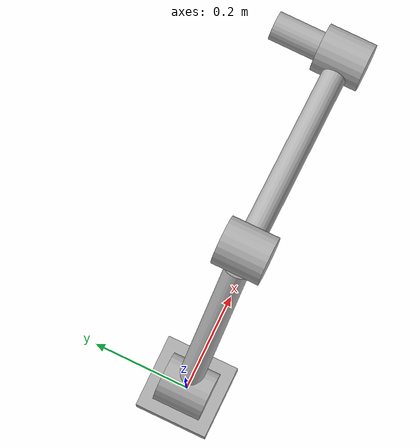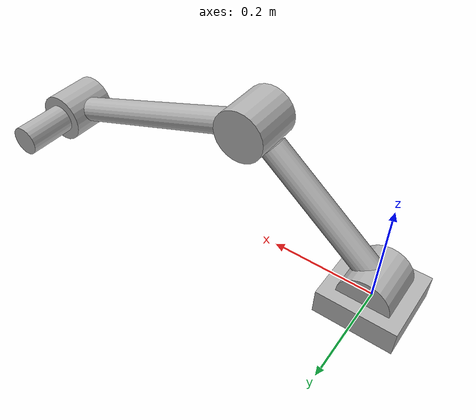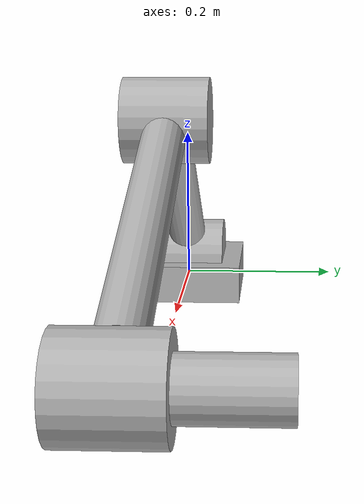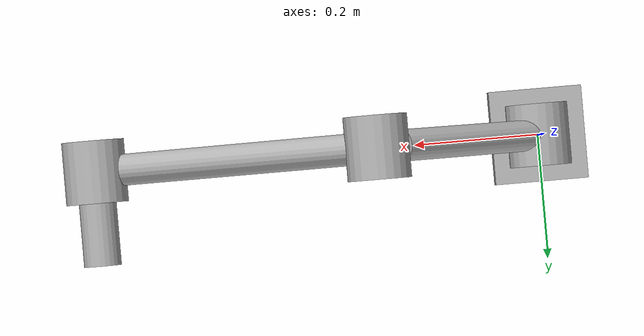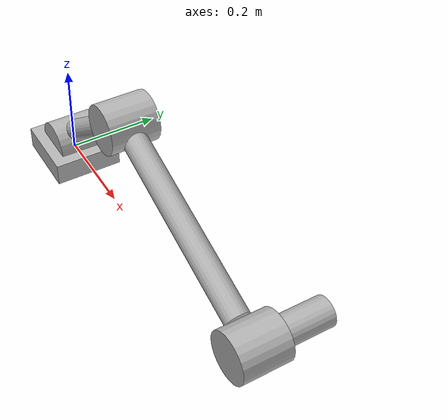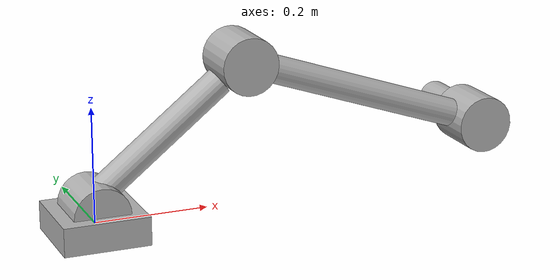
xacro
<?xml version="1.0"?>
<robot xmlns:xacro="http://www.ros.org/wiki/xacro" name="half_cylinder_revolute_joint_with_links">

  <material name="grey">
    <color rgba="0.7 0.7 0.7 1"/>
  </material>

  <material name="blue">
    <color rgba="0.0 0.0 1.0 1"/>  <!-- RGB values for blue -->
  </material>

  <material name="orange">
    <color rgba="1.0 0.5 0.0 1"/>  <!-- RGB values for orange -->
  </material>

  <!-- Base link -->
  <link name="base_link">
    <visual>
      <geometry>
        <box size="0.15 0.15 0.05"/>  <!-- Width, Depth, Height -->
      </geometry>
      <origin xyz="0 0 0" rpy="0 0 0"/>  <!-- Positioned at the origin -->
      <material name="grey"/>  <!-- Base link color -->
    </visual>
    <collision>
      <geometry>
        <box size="0.2 0.2 0.05"/>
      </geometry>
      <origin xyz="0 0 0" rpy="0 0 0"/>
    </collision>
    <inertial>
      <mass value="1.0"/>
      <origin xyz="0 0 0"/>
      <inertia ixx="0.01" ixy="0.0" ixz="0.0" iyy="0.01" iyz="0.0" izz="0.01"/>
    </inertial>
  </link>

  <!-- Revolute Joint (Half-Cylinder) -->
  <joint name="revolute_joint" type="revolute">
    <parent link="base_link"/>
    <child link="joint_link"/>
    <origin xyz="0 0 0.025" rpy="0 0.8 0"/>  <!-- Positioned at the center of the half-cylinder -->
    <axis xyz="0 1 0"/>  <!-- Revolute around the y-axis -->
    <limit lower="-3.14" upper="3.14" effort="100" velocity="1.0"/> <!-- Limits for the joint -->
    <dynamics damping="10" friction="10"/>
  </joint>

  <!-- Link representing the revolute joint as a half-cylinder -->
  <link name="joint_link">
    <visual>
      <geometry>
        <cylinder length="0.1" radius="0.05"/>  <!-- Full cylinder length and radius -->
      </geometry>
      <origin xyz="0 0 0" rpy="1.5708 0 0"/>  <!-- Rotate to lie on its side -->
      <material name="grey"/>  <!-- Material color -->
    </visual>
    <collision>
      <geometry>
        <cylinder length="0.1" radius="0.05"/>
      </geometry>
      <origin xyz="0 0 0" rpy="1.5708 0 0"/>  <!-- Same position for collision -->
    </collision>
    <inertial>
      <mass value="0.5"/>
      <origin xyz="0 0 0"/>
      <inertia ixx="0.01" ixy="0.0" ixz="0.0" iyy="0.01" iyz="0.0" izz="0.01"/>
    </inertial>
  </link>

  <!-- First Cylindrical Link -->
  <joint name="cylindrical_link_joint" type="revolute">
    <parent link="joint_link"/>
    <child link="cylindrical_link"/>
    <origin xyz="0 0 0.15" rpy="0 0.1 0"/>  <!-- Positioned at the end of the half-cylinder -->
    <axis xyz="0 0 1"/>  <!-- Revolute around the z-axis -->
    <limit lower="-3.14" upper="3.14" effort="100" velocity="1.0"/> <!-- Limits for the joint -->
    <dynamics damping="10" friction="10"/>
  </joint>

  <!-- Link representing the cylindrical link -->
  <link name="cylindrical_link">
    <visual>
      <geometry>
        <cylinder length="0.3" radius="0.025"/>  <!-- Cylindrical link definition -->
      </geometry>
      <origin xyz="0 0 0" rpy="0 0 0"/>  <!-- Centered on the joint -->
      <material name="grey"/>  <!-- Set the material to blue -->
    </visual>
    <collision>
      <geometry>
        <cylinder length="0.3" radius="0.025"/>  <!-- Same length as the visual -->
      </geometry>
      <origin xyz="0 0 0" rpy="0 0 0"/>  <!-- Same position for collision -->
    </collision>
    <inertial>
      <mass value="0.5"/>
      <origin xyz="0 0 0"/>
      <inertia ixx="0.01" ixy="0.0" ixz="0.0" iyy="0.01" iyz="0.0" izz="0.01"/>
    </inertial>
  </link>

  <!-- Second Revolute Joint (Full Cylinder) -->
  <joint name="second_revolute_joint" type="revolute">
    <parent link="cylindrical_link"/>
    <child link="second_joint_link"/>
    <origin xyz="0 0 0.2" rpy="0 1 0"/>  <!-- Positioned at the end of the first cylindrical link -->
    <axis xyz="0 1 0"/>  <!-- Revolute around the y-axis to match the orientation -->
    <limit lower="-3.14" upper="3.14" effort="100" velocity="1.0"/> <!-- Limits for the joint -->
    <dynamics damping="10" friction="10"/>
  </joint>

  <!-- Link representing the second revolute joint as a full cylinder -->
  <link name="second_joint_link">
    <visual>
      <geometry>
        <cylinder length="0.1" radius="0.05"/>  <!-- Full cylinder length and radius -->
      </geometry>
      <origin xyz="0 0 0" rpy="1.5708 0 0"/>  <!-- Centered on the joint, rotated to lie on its side -->
      <material name="grey"/>  <!-- Set the material to blue -->
    </visual>
    <collision>
      <geometry>
        <cylinder length="0.1" radius="0.05"/>
      </geometry>
      <origin xyz="0 0 0" rpy="1.5708 0 0"/>  <!-- Same position for collision -->
    </collision>
    <inertial>
      <mass value="0.3"/>
      <origin xyz="0 0 0"/>
      <inertia ixx="0.01" ixy="0.0" ixz="0.0" iyy="0.01" iyz="0.0" izz="0.01"/>
    </inertial>
  </link>

  <!-- New Cylindrical Link connected to the Second Revolute Joint -->
  <joint name="third_revolute_joint" type="revolute">
    <parent link="second_joint_link"/>
    <child link="third_link"/>
    <origin xyz="0 0 0.20" rpy="0 0 0"/>  <!-- Positioned at the end of the second joint link -->
    <axis xyz="0 0 1"/>  <!-- Revolute around the z-axis -->
    <limit lower="-3.14" upper="3.14" effort="100" velocity="1.0"/> <!-- Limits for the joint -->
    <dynamics damping="10" friction="10"/>
  </joint>

  <!-- Link representing the new cylindrical link -->
  <link name="third_link">
    <visual>
      <geometry>
        <cylinder length="0.45" radius="0.025"/>  <!-- New cylindrical link definition -->
      </geometry>
      <origin xyz="0 0 0" rpy="0 0 0"/>  <!-- Centered on the joint -->
      <material name="grey"/>  <!-- Set the material to grey -->
    </visual>
    <collision>
      <geometry>
        <cylinder length="0.45" radius="0.025"/>  <!-- Same length as the visual -->
      </geometry>
      <origin xyz="0 0 0" rpy="0 0 0"/>  <!-- Same position for collision -->
    </collision>
    <inertial>
      <mass value="0.5"/>
      <origin xyz="0 0 0"/>
      <inertia ixx="0.01" ixy="0.0" ixz="0.0" iyy="0.01" iyz="0.0" izz="0.01"/>
    </inertial>
  </link>

  <!-- New Solid Cylindrical Link at the end of the third link -->
  <joint name="solid_cylinder_joint" type="fixed">
    <parent link="third_link"/>
    <child link="solid_cylinder_link"/>
    <origin xyz="0 0 0.275" rpy="0 0 0"/>  <!-- Positioned at the end of the third link -->
  </joint>

  <!-- Link representing the new solid cylindrical link -->
  <link name="solid_cylinder_link">
    <visual>
      <geometry>
        <cylinder length="0.1" radius="0.05"/>  <!-- Solid cylindrical link definition -->
      </geometry>
      <origin xyz="0 0 0" rpy="1.5708 0 0"/>  <!-- Rotated to match the second revolute joint -->
      <material name="grey"/>  <!-- Set the material to grey -->
    </visual>
    <collision>
      <geometry>
        <cylinder length="0.1" radius="0.05"/>
      </geometry>
      <origin xyz="0 0 0" rpy="1.5708 0 0"/>  <!-- Same position for collision -->
    </collision>
    <inertial>
      <mass value="0.5"/>
      <origin xyz="0 0 0"/>
      <inertia ixx="0.01" ixy="0.0" ixz="0.0" iyy="0.01" iyz="0.0" izz="0.01"/>
    </inertial>
  </link>

  <!-- New Prismatic Joint -->
  <joint name="prismatic_joint" type="prismatic">
    <parent link="solid_cylinder_link"/>
    <child link="prismatic_link"/>
    <origin xyz="0 0.1 0" rpy="0 0 0"/>  <!-- Positioned at the end of the solid cylinder link -->
    <axis xyz="0 1 0"/>  <!-- Prismatic along the y-axis -->
    <limit lower="0" upper="0.3" effort="100" velocity="0.1"/> <!-- Limits for the joint -->
    <dynamics damping="10" friction="10"/>
  </joint>

  <!-- Link representing the prismatic extension -->
  <link name="prismatic_link">
    <visual>
      <geometry>
        <cylinder length="0.1" radius="0.03"/>  <!-- New prismatic link definition -->
      </geometry>
      <origin xyz="0 0 0" rpy="1.5708 0 0"/>  <!-- Rotated to match the joint -->
      <material name="grey"/>  <!-- Set the material to orange -->
    </visual>
    <collision>
      <geometry>
        <cylinder length="0.1" radius="0.05"/>
      </geometry>
      <origin xyz="0 0 0" rpy="1.5708 0 0"/>  <!-- Same position for collision -->
    </collision>
    <inertial>
      <mass value="0.5"/>
      <origin xyz="0 0 0"/>
      <inertia ixx="0.01" ixy="0.0" ixz="0.0" iyy="0.01" iyz="0.0" izz="0.01"/>
    </inertial>
  </link>

</robot>
